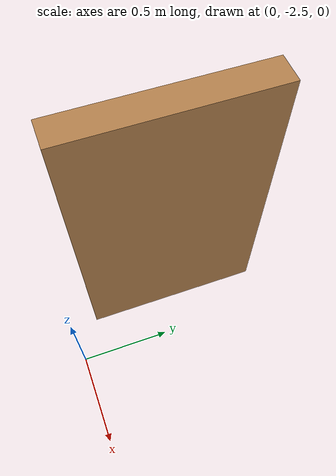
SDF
<?xml version='1.0'?>
<sdf version='1.6'>
  <model name='HO'>
    <pose frame=''>-0.298 -1.867 0 0 -0 0</pose>
    <link name='Wall_54'>
      <collision name='Wall_54_Collision'>
        <geometry>
          <box>
            <size>1 0.15 1.5</size>
          </box>
        </geometry>
        <pose frame=''>0 0 0.75 0 -0 0</pose>
      </collision>
      <visual name='Wall_54_Visual'>
        <pose frame=''>0 0 0.75 0 -0 0</pose>
        <geometry>
          <box>
            <size>1 0.15 1.5</size>
          </box>
        </geometry>
        <material>
          <script>
            <uri>file://media/materials/scripts/gazebo.material</uri>
            <name>Gazebo/Wood</name>
          </script>
          <ambient>1 1 1 1</ambient>
        </material>
        <meta>
          <layer>0</layer>
        </meta>
      </visual>
      <pose frame=''>0 0 0 0 -0 -1.5708</pose>
    </link>
    <static>1</static>
  </model>
</sdf>
